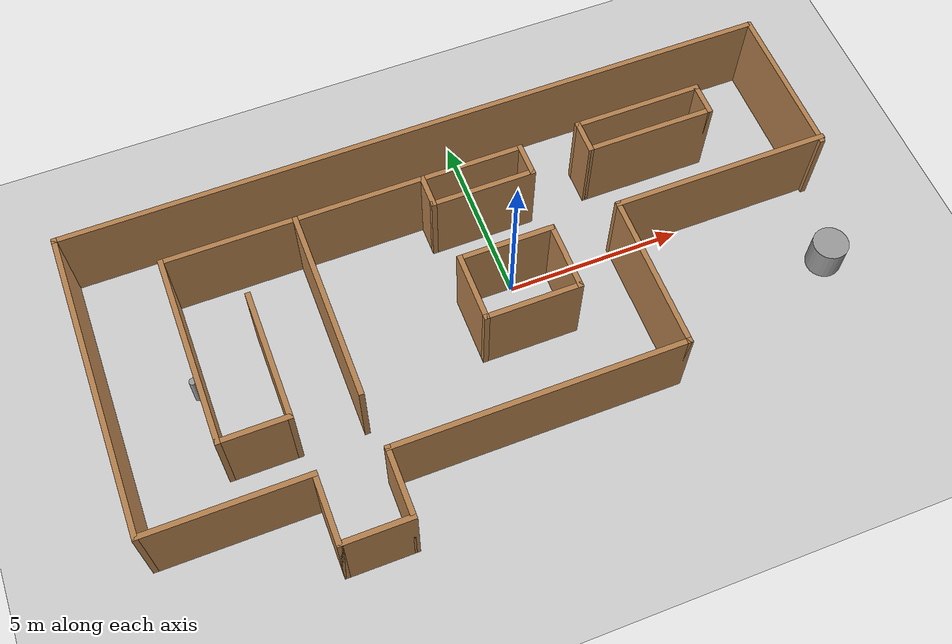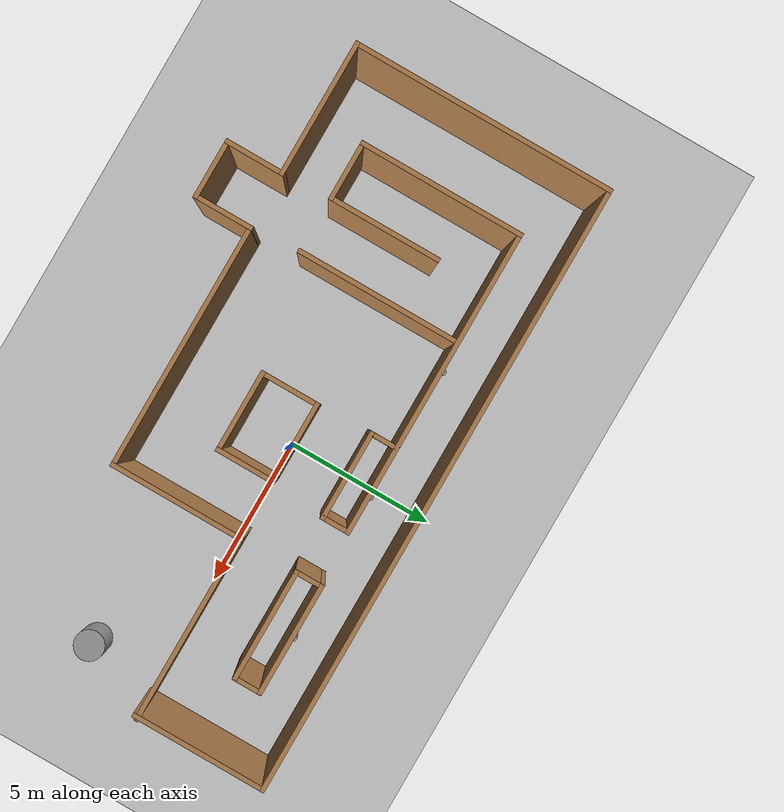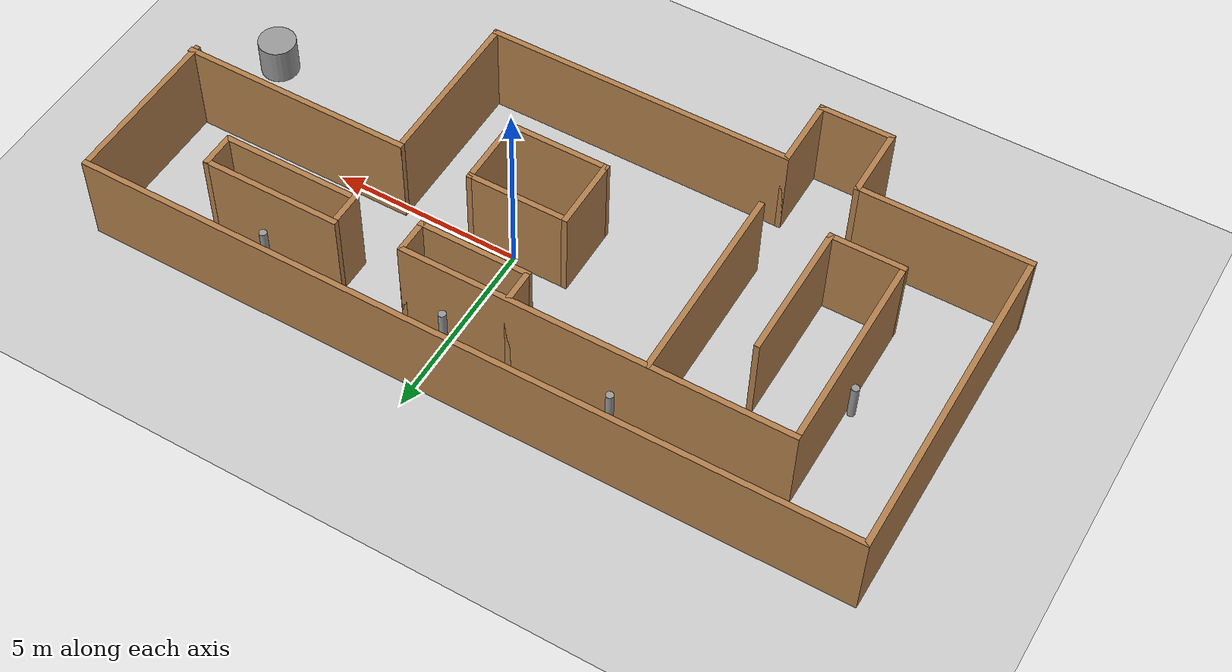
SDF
<sdf version="1.7">
 <world name="default">
  <light name="sun" type="directional">
   <pose>0 0 10 0 -0 0</pose>
   <diffuse>0.8 0.8 0.8 1</diffuse>
   <specular>0.2 0.2 0.2 1</specular>
   <attenuation>
    <range>1000</range>
    <constant>0.9</constant>
    <linear>0.01</linear>
    <quadratic>0.001</quadratic>
   </attenuation>
   <direction>-0.5 0.1 -0.9</direction>
   <spot><inner_angle>0</inner_angle><outer_angle>0</outer_angle><falloff>0</falloff></spot>
  </light>
  <model name="ground_plane">
   <static>1</static>
   <link name="link">
    <collision name="collision">
     <geometry><plane><normal>0 0 1</normal><size>100 100</size></plane></geometry>
     <surface>
      <contact><collide_bitmask>65535</collide_bitmask></contact>
      <friction><ode><mu>100</mu><mu2>50</mu2></ode></friction>
     </surface>
    </collision>
    <visual name="visual">
     <cast_shadows>0</cast_shadows>
     <geometry><plane><normal>0 0 1</normal><size>100 100</size></plane></geometry>
     <material>
      <script><uri>file://media/materials/scripts/gazebo.material</uri><name>Gazebo/Grey</name></script>
     </material>
    </visual>
   </link>
  </model>
  <gravity>0 0 -9.8</gravity>
  <magnetic_field>6e-06 2.3e-05 -4.2e-05</magnetic_field>
  <atmosphere type="adiabatic"/>
  <physics name="default_physics" default="0" type="ode">
   <max_step_size>0.001</max_step_size>
   <real_time_factor>1</real_time_factor>
   <real_time_update_rate>1000</real_time_update_rate>
  </physics>
  <scene><ambient>0.4 0.4 0.4 1</ambient><background>0.7 0.7 0.7 1</background><shadows>1</shadows></scene>
  <audio><device>default</device></audio>
  <spherical_coordinates>
   <surface_model>EARTH_WGS84</surface_model>
   <latitude_deg>0</latitude_deg>
   <longitude_deg>0</longitude_deg>
   <elevation>0</elevation>
   <heading_deg>0</heading_deg>
  </spherical_coordinates>
  <model name="dans_basic_maze">
   <pose>-1.05323 -0.832402 0 0 -0 0</pose>
   <link name="Wall_0">
    <collision name="Wall_0_Collision">
     <geometry><box><size>5.5 0.15 2.5</size></box></geometry>
     <pose>0 0 1.25 0 -0 0</pose>
    </collision>
    <visual name="Wall_0_Visual">
     <pose>0 0 1.25 0 -0 0</pose>
     <geometry><box><size>5.5 0.15 2.5</size></box></geometry>
     <material>
      <script><uri>file://media/materials/scripts/gazebo.material</uri><name>Gazebo/Wood</name></script>
      <ambient>1 1 1 1</ambient>
     </material>
     <meta><layer>0</layer></meta>
    </visual>
    <pose>-7.75378 0.921526 0 0 -0 1.5708</pose>
   </link>
   <link name="Wall_1">
    <collision name="Wall_1_Collision">
     <geometry><box><size>10.25 0.15 2.5</size></box></geometry>
     <pose>0 0 1.25 0 -0 0</pose>
    </collision>
    <visual name="Wall_1_Visual">
     <pose>0 0 1.25 0 -0 0</pose>
     <geometry><box><size>10.25 0.15 2.5</size></box></geometry>
     <material>
      <script><uri>file://media/materials/scripts/gazebo.material</uri><name>Gazebo/Wood</name></script>
      <ambient>1 1 1 1</ambient>
     </material>
     <meta><layer>0</layer></meta>
    </visual>
    <pose>-2.70378 3.59653 0 0 -0 0</pose>
   </link>
   <link name="Wall_11">
    <collision name="Wall_11_Collision">
     <geometry><box><size>5.5 0.15 2.5</size></box></geometry>
     <pose>0 0 1.25 0 -0 0</pose>
    </collision>
    <visual name="Wall_11_Visual">
     <pose>0 0 1.25 0 -0 0</pose>
     <geometry><box><size>5.5 0.15 2.5</size></box></geometry>
     <material>
      <script><uri>file://media/materials/scripts/gazebo.material</uri><name>Gazebo/Wood</name></script>
      <ambient>1 1 1 1</ambient>
     </material>
     <meta><layer>0</layer></meta>
    </visual>
    <pose>-4.08824 0.913758 0 0 -0 -1.5708</pose>
   </link>
   <link name="Wall_13">
    <collision name="Wall_13_Collision">
     <geometry><box><size>2.75 0.15 2.5</size></box></geometry>
     <pose>0 0 1.25 0 -0 0</pose>
    </collision>
    <visual name="Wall_13_Visual">
     <pose>0 0 1.25 0 -0 0</pose>
     <geometry><box><size>2.75 0.15 2.5</size></box></geometry>
     <material>
      <script><uri>file://media/materials/scripts/gazebo.material</uri><name>Gazebo/Wood</name></script>
      <ambient>1 1 1 1</ambient>
     </material>
     <meta><layer>0</layer></meta>
    </visual>
    <pose>0.866401 0.928739 0 0 -0 0</pose>
   </link>
   <link name="Wall_14">
    <collision name="Wall_14_Collision">
     <geometry><box><size>2 0.15 2.5</size></box></geometry>
     <pose>0 0 1.25 0 -0 0</pose>
    </collision>
    <visual name="Wall_14_Visual">
     <pose>0 0 1.25 0 -0 0</pose>
     <geometry><box><size>2 0.15 2.5</size></box></geometry>
     <material>
      <script><uri>file://media/materials/scripts/gazebo.material</uri><name>Gazebo/Wood</name></script>
      <ambient>1 1 1 1</ambient>
     </material>
     <meta><layer>0</layer></meta>
    </visual>
    <pose>2.1664 0.003739 0 0 -0 -1.5708</pose>
   </link>
   <link name="Wall_15">
    <collision name="Wall_15_Collision">
     <geometry><box><size>2.75 0.15 2.5</size></box></geometry>
     <pose>0 0 1.25 0 -0 0</pose>
    </collision>
    <visual name="Wall_15_Visual">
     <pose>0 0 1.25 0 -0 0</pose>
     <geometry><box><size>2.75 0.15 2.5</size></box></geometry>
     <material>
      <script><uri>file://media/materials/scripts/gazebo.material</uri><name>Gazebo/Wood</name></script>
      <ambient>1 1 1 1</ambient>
     </material>
     <meta><layer>0</layer></meta>
    </visual>
    <pose>0.866401 -0.921261 0 0 -0 3.14159</pose>
   </link>
   <link name="Wall_16">
    <collision name="Wall_16_Collision">
     <geometry><box><size>2 0.15 2.5</size></box></geometry>
     <pose>0 0 1.25 0 -0 0</pose>
    </collision>
    <visual name="Wall_16_Visual">
     <pose>0 0 1.25 0 -0 0</pose>
     <geometry><box><size>2 0.15 2.5</size></box></geometry>
     <material>
      <script><uri>file://media/materials/scripts/gazebo.material</uri><name>Gazebo/Wood</name></script>
      <ambient>1 1 1 1</ambient>
     </material>
     <meta><layer>0</layer></meta>
    </visual>
    <pose>-0.433599 0.003739 0 0 -0 1.5708</pose>
   </link>
   <link name="Wall_18">
    <collision name="Wall_18_Collision">
     <geometry><box><size>1 0.15 2.5</size></box></geometry>
     <pose>0 0 1.25 0 -0 0</pose>
    </collision>
    <visual name="Wall_18_Visual">
     <pose>0 0 1.25 0 -0 0</pose>
     <geometry><box><size>1 0.15 2.5</size></box></geometry>
     <material>
      <script><uri>file://media/materials/scripts/gazebo.material</uri><name>Gazebo/Wood</name></script>
      <ambient>1 1 1 1</ambient>
     </material>
     <meta><layer>0</layer></meta>
    </visual>
    <pose>4.12313 3.30254 0 0 -0 -1.5708</pose>
   </link>
   <link name="Wall_19">
    <collision name="Wall_19_Collision">
     <geometry><box><size>3.75 0.15 2.5</size></box></geometry>
     <pose>0 0 1.25 0 -0 0</pose>
    </collision>
    <visual name="Wall_19_Visual">
     <pose>0 0 1.25 0 -0 0</pose>
     <geometry><box><size>3.75 0.15 2.5</size></box></geometry>
     <material>
      <script><uri>file://media/materials/scripts/gazebo.material</uri><name>Gazebo/Wood</name></script>
      <ambient>1 1 1 1</ambient>
     </material>
     <meta><layer>0</layer></meta>
    </visual>
    <pose>5.92313 2.87754 0 0 -0 0</pose>
   </link>
   <link name="Wall_2">
    <collision name="Wall_2_Collision">
     <geometry><box><size>1 0.15 2.5</size></box></geometry>
     <pose>0 0 1.25 0 -0 0</pose>
    </collision>
    <visual name="Wall_2_Visual">
     <pose>0 0 1.25 0 -0 0</pose>
     <geometry><box><size>1 0.15 2.5</size></box></geometry>
     <material>
      <script><uri>file://media/materials/scripts/gazebo.material</uri><name>Gazebo/Wood</name></script>
      <ambient>1 1 1 1</ambient>
     </material>
     <meta><layer>0</layer></meta>
    </visual>
    <pose>2.34622 3.17153 0 0 -0 -1.5708</pose>
   </link>
   <link name="Wall_20">
    <collision name="Wall_20_Collision">
     <geometry><box><size>1 0.15 2.5</size></box></geometry>
     <pose>0 0 1.25 0 -0 0</pose>
    </collision>
    <visual name="Wall_20_Visual">
     <pose>0 0 1.25 0 -0 0</pose>
     <geometry><box><size>1 0.15 2.5</size></box></geometry>
     <material>
      <script><uri>file://media/materials/scripts/gazebo.material</uri><name>Gazebo/Wood</name></script>
      <ambient>1 1 1 1</ambient>
     </material>
     <meta><layer>0</layer></meta>
    </visual>
    <pose>7.72313 3.30254 0 0 -0 1.5708</pose>
   </link>
   <link name="Wall_21">
    <collision name="Wall_21_Collision">
     <geometry><box><size>3.75 0.15 2.5</size></box></geometry>
     <pose>0 0 1.25 0 -0 0</pose>
    </collision>
    <visual name="Wall_21_Visual">
     <pose>0 0 1.25 0 -0 0</pose>
     <geometry><box><size>3.75 0.15 2.5</size></box></geometry>
     <material>
      <script><uri>file://media/materials/scripts/gazebo.material</uri><name>Gazebo/Wood</name></script>
      <ambient>1 1 1 1</ambient>
     </material>
     <meta><layer>0</layer></meta>
    </visual>
    <pose>5.92313 3.72754 0 0 -0 3.14159</pose>
   </link>
   <link name="Wall_23">
    <collision name="Wall_23_Collision">
     <geometry><box><size>4.5 0.15 2.5</size></box></geometry>
     <pose>0 0 1.25 0 -0 0</pose>
    </collision>
    <visual name="Wall_23_Visual">
     <pose>0 0 1.25 0 -0 0</pose>
     <geometry><box><size>4.5 0.15 2.5</size></box></geometry>
     <material>
      <script><uri>file://media/materials/scripts/gazebo.material</uri><name>Gazebo/Wood</name></script>
      <ambient>1 1 1 1</ambient>
     </material>
     <meta><layer>0</layer></meta>
    </visual>
    <pose>4.1 -1.2 0 0 -0 -1.5708</pose>
   </link>
   <link name="Wall_3">
    <collision name="Wall_3_Collision">
     <geometry><box><size>3 0.15 2.5</size></box></geometry>
     <pose>0 0 1.25 0 -0 0</pose>
    </collision>
    <visual name="Wall_3_Visual">
     <pose>0 0 1.25 0 -0 0</pose>
     <geometry><box><size>3 0.15 2.5</size></box></geometry>
     <material>
      <script><uri>file://media/materials/scripts/gazebo.material</uri><name>Gazebo/Wood</name></script>
      <ambient>1 1 1 1</ambient>
     </material>
     <meta><layer>0</layer></meta>
    </visual>
    <pose>0.92122 2.74653 0 0 -0 3.14159</pose>
   </link>
   <link name="Wall_33">
    <collision name="Wall_33_Collision">
     <geometry><box><size>4.54626 0.15 2.5</size></box></geometry>
     <pose>0 0 1.25 0 -0 0</pose>
    </collision>
    <visual name="Wall_33_Visual">
     <pose>0 0 1.25 0 -0 0</pose>
     <geometry><box><size>4.54626 0.15 2.5</size></box></geometry>
     <material>
      <script><uri>file://media/materials/scripts/gazebo.material</uri><name>Gazebo/Wood</name></script>
      <ambient>1 1 1 1</ambient>
     </material>
     <meta><layer>0</layer></meta>
    </visual>
    <pose>-8.00187 -3.375 0 0 -0 3.14159</pose>
   </link>
   <link name="Wall_34">
    <collision name="Wall_34_Collision">
     <geometry><box><size>8.75 0.15 2.5</size></box></geometry>
     <pose>0 0 1.25 0 -0 0</pose>
    </collision>
    <visual name="Wall_34_Visual">
     <pose>0 0 1.25 0 -0 0</pose>
     <geometry><box><size>8.75 0.15 2.5</size></box></geometry>
     <material>
      <script><uri>file://media/materials/scripts/gazebo.material</uri><name>Gazebo/Wood</name></script>
      <ambient>1 1 1 1</ambient>
     </material>
     <meta><layer>0</layer></meta>
    </visual>
    <pose>-10.2 0.925 0 0 -0 1.5708</pose>
   </link>
   <link name="Wall_35">
    <collision name="Wall_35_Collision">
     <geometry><box><size>20.5 0.15 2.5</size></box></geometry>
     <pose>0 0 1.25 0 -0 0</pose>
    </collision>
    <visual name="Wall_35_Visual">
     <pose>0 0 1.25 0 -0 0</pose>
     <geometry><box><size>20.5 0.15 2.5</size></box></geometry>
     <material>
      <script><uri>file://media/materials/scripts/gazebo.material</uri><name>Gazebo/Wood</name></script>
      <ambient>1 1 1 1</ambient>
     </material>
     <meta><layer>0</layer></meta>
    </visual>
    <pose>-0.025 5.225 0 0 -0 0</pose>
   </link>
   <link name="Wall_36">
    <collision name="Wall_36_Collision">
     <geometry><box><size>4.5 0.15 2.5</size></box></geometry>
     <pose>0 0 1.25 0 -0 0</pose>
    </collision>
    <visual name="Wall_36_Visual">
     <pose>0 0 1.25 0 -0 0</pose>
     <geometry><box><size>4.5 0.15 2.5</size></box></geometry>
     <material>
      <script><uri>file://media/materials/scripts/gazebo.material</uri><name>Gazebo/Wood</name></script>
      <ambient>1 1 1 1</ambient>
     </material>
     <meta><layer>0</layer></meta>
    </visual>
    <pose>10.15 3.05 0 0 -0 -1.5708</pose>
   </link>
   <link name="Wall_38">
    <collision name="Wall_38_Collision">
     <geometry><box><size>6.25 0.15 2.5</size></box></geometry>
     <pose>0 0 1.25 0 -0 0</pose>
    </collision>
    <visual name="Wall_38_Visual">
     <pose>0 0 1.25 0 -0 0</pose>
     <geometry><box><size>6.25 0.15 2.5</size></box></geometry>
     <material>
      <script><uri>file://media/materials/scripts/gazebo.material</uri><name>Gazebo/Wood</name></script>
      <ambient>1 1 1 1</ambient>
     </material>
     <meta><layer>0</layer></meta>
    </visual>
    <pose>7.15 0.975 0 0 -0 0</pose>
   </link>
   <link name="Wall_40">
    <collision name="Wall_40_Collision">
     <geometry><box><size>2 0.15 2.5</size></box></geometry>
     <pose>0 0 1.25 0 -0 0</pose>
    </collision>
    <visual name="Wall_40_Visual">
     <pose>0 0 1.25 0 -0 0</pose>
     <geometry><box><size>2 0.15 2.5</size></box></geometry>
     <material>
      <script><uri>file://media/materials/scripts/gazebo.material</uri><name>Gazebo/Wood</name></script>
      <ambient>1 1 1 1</ambient>
     </material>
     <meta><layer>0</layer></meta>
    </visual>
    <pose>-6.82878 -1.75347 0 0 -0 0</pose>
   </link>
   <link name="Wall_41">
    <collision name="Wall_41_Collision">
     <geometry><box><size>3.75 0.15 2.5</size></box></geometry>
     <pose>0 0 1.25 0 -0 0</pose>
    </collision>
    <visual name="Wall_41_Visual">
     <pose>0 0 1.25 0 -0 0</pose>
     <geometry><box><size>3.75 0.15 2.5</size></box></geometry>
     <material>
      <script><uri>file://media/materials/scripts/gazebo.material</uri><name>Gazebo/Wood</name></script>
      <ambient>1 1 1 1</ambient>
     </material>
     <meta><layer>0</layer></meta>
    </visual>
    <pose>-5.90378 0.046526 0 0 -0 1.5708</pose>
   </link>
   <link name="Wall_43">
    <collision name="Wall_43_Collision">
     <geometry><box><size>2 0.15 2.5</size></box></geometry>
     <pose>0 0 1.25 0 -0 0</pose>
    </collision>
    <visual name="Wall_43_Visual">
     <pose>0 0 1.25 0 -0 0</pose>
     <geometry><box><size>2 0.15 2.5</size></box></geometry>
     <material>
      <script><uri>file://media/materials/scripts/gazebo.material</uri><name>Gazebo/Wood</name></script>
      <ambient>1 1 1 1</ambient>
     </material>
     <meta><layer>0</layer></meta>
    </visual>
    <pose>-5.80374 -4.3 0 0 -0 -1.5708</pose>
   </link>
   <link name="Wall_44">
    <collision name="Wall_44_Collision">
     <geometry><box><size>2 0.15 2.5</size></box></geometry>
     <pose>0 0 1.25 0 -0 0</pose>
    </collision>
    <visual name="Wall_44_Visual">
     <pose>0 0 1.25 0 -0 0</pose>
     <geometry><box><size>2 0.15 2.5</size></box></geometry>
     <material>
      <script><uri>file://media/materials/scripts/gazebo.material</uri><name>Gazebo/Wood</name></script>
      <ambient>1 1 1 1</ambient>
     </material>
     <meta><layer>0</layer></meta>
    </visual>
    <pose>-4.87874 -5.225 0 0 -0 0</pose>
   </link>
   <link name="Wall_45">
    <collision name="Wall_45_Collision">
     <geometry><box><size>2 0.15 2.5</size></box></geometry>
     <pose>0 0 1.25 0 -0 0</pose>
    </collision>
    <visual name="Wall_45_Visual">
     <pose>0 0 1.25 0 -0 0</pose>
     <geometry><box><size>2 0.15 2.5</size></box></geometry>
     <material>
      <script><uri>file://media/materials/scripts/gazebo.material</uri><name>Gazebo/Wood</name></script>
      <ambient>1 1 1 1</ambient>
     </material>
     <meta><layer>0</layer></meta>
    </visual>
    <pose>-3.95374 -4.3 0 0 -0 1.5708</pose>
   </link>
   <link name="Wall_46">
    <collision name="Wall_46_Collision">
     <geometry><box><size>8.20374 0.15 2.5</size></box></geometry>
     <pose>0 0 1.25 0 -0 0</pose>
    </collision>
    <visual name="Wall_46_Visual">
     <pose>0 0 1.25 0 -0 0</pose>
     <geometry><box><size>8.20374 0.15 2.5</size></box></geometry>
     <material>
      <script><uri>file://media/materials/scripts/gazebo.material</uri><name>Gazebo/Wood</name></script>
      <ambient>1 1 1 1</ambient>
     </material>
     <meta><layer>0</layer></meta>
    </visual>
    <pose>0.073131 -3.375 0 0 -0 0</pose>
   </link>
   <link name="Wall_6">
    <collision name="Wall_6_Collision">
     <geometry><box><size>1 0.15 2.5</size></box></geometry>
     <pose>0 0 1.25 0 -0 0</pose>
    </collision>
    <visual name="Wall_6_Visual">
     <pose>0 0 1.25 0 -0 0</pose>
     <geometry><box><size>1 0.15 2.5</size></box></geometry>
     <material>
      <script><uri>file://media/materials/scripts/gazebo.material</uri><name>Gazebo/Wood</name></script>
      <ambient>1 1 1 1</ambient>
     </material>
     <meta><layer>0</layer></meta>
    </visual>
    <pose>-0.50378 3.17153 0 0 -0 1.5708</pose>
   </link>
   <static>1</static>
  </model>
  <model name="Untitled">
   <link name="link_2">
    <inertial>
     <mass>1</mass>
     <inertia><ixx>0.145833</ixx><ixy>0</ixy><ixz>0</ixz><iyy>0.145833</iyy><iyz>0</iyz><izz>0.125</izz></inertia>
    </inertial>
    <pose>2e-06 -3e-06 0 0 -0 0</pose>
    <visual name="visual">
     <geometry><cylinder><radius>0.5</radius><length>1</length></cylinder></geometry>
     <material>
      <lighting>1</lighting>
      <script><uri>file://media/materials/scripts/gazebo.material</uri><name>Gazebo/Grey</name></script>
      <shader type="pixel"/>
     </material>
    </visual>
    <collision name="collision">
     <geometry><cylinder><radius>0.5</radius><length>1</length></cylinder></geometry>
     <surface>
      <friction>
       <ode><mu>1</mu><mu2>1</mu2><fdir1>0 0 0</fdir1><slip1>0</slip1><slip2>0</slip2></ode>
       <torsional>
        <coefficient>1</coefficient>
        <patch_radius>0</patch_radius>
        <surface_radius>0</surface_radius>
        <use_patch_radius>1</use_patch_radius>
        <ode><slip>0</slip></ode>
       </torsional>
      </friction>
      <bounce><restitution_coefficient>0</restitution_coefficient><threshold>1e+06</threshold></bounce>
      <contact>
       <collide_without_contact>0</collide_without_contact>
       <collide_without_contact_bitmask>1</collide_without_contact_bitmask>
       <collide_bitmask>1</collide_bitmask>
       <ode>
        <soft_cfm>0</soft_cfm>
        <soft_erp>0.2</soft_erp>
        <kp>1e+13</kp>
        <kd>1</kd>
        <max_vel>0.01</max_vel>
        <min_depth>0</min_depth>
       </ode>
       <bullet>
        <split_impulse>1</split_impulse>
        <split_impulse_penetration_threshold>-0.01</split_impulse_penetration_threshold>
        <soft_cfm>0</soft_cfm>
        <soft_erp>0.2</soft_erp>
        <kp>1e+13</kp>
        <kd>1</kd>
       </bullet>
      </contact>
     </surface>
    </collision>
   </link>
   <static>0</static>
   <pose>8.51236 -2.3072 0.499998 3e-06 3e-06 0</pose>
  </model>
  <model name="Untitled_1">
   <link name="link_0">
    <inertial>
     <mass>1</mass>
     <inertia><ixx>0.145833</ixx><ixy>0</ixy><ixz>0</ixz><iyy>0.145833</iyy><iyz>0</iyz><izz>0.125</izz></inertia>
    </inertial>
    <pose>-0 5e-06 0 0 -0 0</pose>
    <visual name="visual">
     <geometry><cylinder><radius>0.1</radius><length>1</length></cylinder></geometry>
     <material>
      <lighting>1</lighting>
      <script><uri>file://media/materials/scripts/gazebo.material</uri><name>Gazebo/Grey</name></script>
      <shader type="pixel"><normal_map>__default__</normal_map></shader>
      <ambient>0.3 0.3 0.3 1</ambient>
      <diffuse>0.7 0.7 0.7 1</diffuse>
      <specular>0.01 0.01 0.01 1</specular>
      <emissive>0 0 0 1</emissive>
     </material>
    </visual>
    <collision name="collision">
     <geometry><cylinder><radius>0.1</radius><length>1</length></cylinder></geometry>
     <surface>
      <friction>
       <ode><mu>1</mu><mu2>1</mu2><fdir1>0 0 0</fdir1><slip1>0</slip1><slip2>0</slip2></ode>
       <torsional>
        <coefficient>1</coefficient>
        <patch_radius>0</patch_radius>
        <surface_radius>0</surface_radius>
        <use_patch_radius>1</use_patch_radius>
        <ode><slip>0</slip></ode>
       </torsional>
      </friction>
      <bounce><restitution_coefficient>0</restitution_coefficient><threshold>1e+06</threshold></bounce>
      <contact>
       <collide_without_contact>0</collide_without_contact>
       <collide_without_contact_bitmask>1</collide_without_contact_bitmask>
       <collide_bitmask>1</collide_bitmask>
       <ode>
        <soft_cfm>0</soft_cfm>
        <soft_erp>0.2</soft_erp>
        <kp>1e+13</kp>
        <kd>1</kd>
        <max_vel>0.01</max_vel>
        <min_depth>0</min_depth>
       </ode>
       <bullet>
        <split_impulse>1</split_impulse>
        <split_impulse_penetration_threshold>-0.01</split_impulse_penetration_threshold>
        <soft_cfm>0</soft_cfm>
        <soft_erp>0.2</soft_erp>
        <kp>1e+13</kp>
        <kd>1</kd>
       </bullet>
      </contact>
     </surface>
    </collision>
   </link>
   <static>0</static>
   <pose>-4.32669 2.93913 0.499992 -0 -0 -0.000129</pose>
  </model>
  <model name="Untitled_1_clone">
   <link name="link_0">
    <inertial>
     <mass>1</mass>
     <inertia><ixx>0.145833</ixx><ixy>0</ixy><ixz>0</ixz><iyy>0.145833</iyy><iyz>0</iyz><izz>0.125</izz></inertia>
    </inertial>
    <pose>-0 5e-06 0 0 -0 0</pose>
    <visual name="visual">
     <geometry><cylinder><radius>0.1</radius><length>1</length></cylinder></geometry>
     <material>
      <lighting>1</lighting>
      <script><uri>file://media/materials/scripts/gazebo.material</uri><name>Gazebo/Grey</name></script>
      <shader type="pixel"><normal_map>__default__</normal_map></shader>
      <ambient>0.3 0.3 0.3 1</ambient>
      <diffuse>0.7 0.7 0.7 1</diffuse>
      <specular>0.01 0.01 0.01 1</specular>
      <emissive>0 0 0 1</emissive>
     </material>
    </visual>
    <collision name="collision">
     <geometry><cylinder><radius>0.1</radius><length>1</length></cylinder></geometry>
     <surface>
      <friction>
       <ode><mu>1</mu><mu2>1</mu2><fdir1>0 0 0</fdir1><slip1>0</slip1><slip2>0</slip2></ode>
       <torsional>
        <coefficient>1</coefficient>
        <patch_radius>0</patch_radius>
        <surface_radius>0</surface_radius>
        <use_patch_radius>1</use_patch_radius>
        <ode><slip>0</slip></ode>
       </torsional>
      </friction>
      <bounce><restitution_coefficient>0</restitution_coefficient><threshold>1e+06</threshold></bounce>
      <contact>
       <collide_without_contact>0</collide_without_contact>
       <collide_without_contact_bitmask>1</collide_without_contact_bitmask>
       <collide_bitmask>1</collide_bitmask>
       <ode>
        <soft_cfm>0</soft_cfm>
        <soft_erp>0.2</soft_erp>
        <kp>1e+13</kp>
        <kd>1</kd>
        <max_vel>0.01</max_vel>
        <min_depth>0</min_depth>
       </ode>
       <bullet>
        <split_impulse>1</split_impulse>
        <split_impulse_penetration_threshold>-0.01</split_impulse_penetration_threshold>
        <soft_cfm>0</soft_cfm>
        <soft_erp>0.2</soft_erp>
        <kp>1e+13</kp>
        <kd>1</kd>
       </bullet>
      </contact>
     </surface>
    </collision>
   </link>
   <static>0</static>
   <pose>-8.99458 -0.065574 0.499998 0 0 -5.5e-05</pose>
  </model>
  <model name="Untitled_1_clone_0">
   <link name="link_0">
    <inertial>
     <mass>1</mass>
     <inertia><ixx>0.145833</ixx><ixy>0</ixy><ixz>0</ixz><iyy>0.145833</iyy><iyz>0</iyz><izz>0.125</izz></inertia>
    </inertial>
    <pose>-0 5e-06 0 0 -0 0</pose>
    <visual name="visual">
     <geometry><cylinder><radius>0.1</radius><length>1</length></cylinder></geometry>
     <material>
      <lighting>1</lighting>
      <script><uri>file://media/materials/scripts/gazebo.material</uri><name>Gazebo/Grey</name></script>
      <shader type="pixel"><normal_map>__default__</normal_map></shader>
      <ambient>0.3 0.3 0.3 1</ambient>
      <diffuse>0.7 0.7 0.7 1</diffuse>
      <specular>0.01 0.01 0.01 1</specular>
      <emissive>0 0 0 1</emissive>
     </material>
    </visual>
    <collision name="collision">
     <geometry><cylinder><radius>0.1</radius><length>1</length></cylinder></geometry>
     <surface>
      <friction>
       <ode><mu>1</mu><mu2>1</mu2><fdir1>0 0 0</fdir1><slip1>0</slip1><slip2>0</slip2></ode>
       <torsional>
        <coefficient>1</coefficient>
        <patch_radius>0</patch_radius>
        <surface_radius>0</surface_radius>
        <use_patch_radius>1</use_patch_radius>
        <ode><slip>0</slip></ode>
       </torsional>
      </friction>
      <bounce><restitution_coefficient>0</restitution_coefficient><threshold>1e+06</threshold></bounce>
      <contact>
       <collide_without_contact>0</collide_without_contact>
       <collide_without_contact_bitmask>1</collide_without_contact_bitmask>
       <collide_bitmask>1</collide_bitmask>
       <ode>
        <soft_cfm>0</soft_cfm>
        <soft_erp>0.2</soft_erp>
        <kp>1e+13</kp>
        <kd>1</kd>
        <max_vel>0.01</max_vel>
        <min_depth>0</min_depth>
       </ode>
       <bullet>
        <split_impulse>1</split_impulse>
        <split_impulse_penetration_threshold>-0.01</split_impulse_penetration_threshold>
        <soft_cfm>0</soft_cfm>
        <soft_erp>0.2</soft_erp>
        <kp>1e+13</kp>
        <kd>1</kd>
       </bullet>
      </contact>
     </surface>
    </collision>
   </link>
   <static>0</static>
   <pose>0.150555 2.94006 0.499992 0 -0 -8.9e-05</pose>
  </model>
  <model name="Untitled_1_clone_1">
   <link name="link_0">
    <inertial>
     <mass>1</mass>
     <inertia><ixx>0.145833</ixx><ixy>0</ixy><ixz>0</ixz><iyy>0.145833</iyy><iyz>0</iyz><izz>0.125</izz></inertia>
    </inertial>
    <pose>-0 5e-06 0 0 -0 0</pose>
    <visual name="visual">
     <geometry><cylinder><radius>0.1</radius><length>1</length></cylinder></geometry>
     <material>
      <lighting>1</lighting>
      <script><uri>file://media/materials/scripts/gazebo.material</uri><name>Gazebo/Grey</name></script>
      <shader type="pixel"><normal_map>__default__</normal_map></shader>
      <ambient>0.3 0.3 0.3 1</ambient>
      <diffuse>0.7 0.7 0.7 1</diffuse>
      <specular>0.01 0.01 0.01 1</specular>
      <emissive>0 0 0 1</emissive>
     </material>
    </visual>
    <collision name="collision">
     <geometry><cylinder><radius>0.1</radius><length>1</length></cylinder></geometry>
     <surface>
      <friction>
       <ode><mu>1</mu><mu2>1</mu2><fdir1>0 0 0</fdir1><slip1>0</slip1><slip2>0</slip2></ode>
       <torsional>
        <coefficient>1</coefficient>
        <patch_radius>0</patch_radius>
        <surface_radius>0</surface_radius>
        <use_patch_radius>1</use_patch_radius>
        <ode><slip>0</slip></ode>
       </torsional>
      </friction>
      <bounce><restitution_coefficient>0</restitution_coefficient><threshold>1e+06</threshold></bounce>
      <contact>
       <collide_without_contact>0</collide_without_contact>
       <collide_without_contact_bitmask>1</collide_without_contact_bitmask>
       <collide_bitmask>1</collide_bitmask>
       <ode>
        <soft_cfm>0</soft_cfm>
        <soft_erp>0.2</soft_erp>
        <kp>1e+13</kp>
        <kd>1</kd>
        <max_vel>0.01</max_vel>
        <min_depth>0</min_depth>
       </ode>
       <bullet>
        <split_impulse>1</split_impulse>
        <split_impulse_penetration_threshold>-0.01</split_impulse_penetration_threshold>
        <soft_cfm>0</soft_cfm>
        <soft_erp>0.2</soft_erp>
        <kp>1e+13</kp>
        <kd>1</kd>
       </bullet>
      </contact>
     </surface>
    </collision>
   </link>
   <static>0</static>
   <pose>5.12444 3.07724 0.499991 -0 -0 -0.000121</pose>
  </model>
 </world>
</sdf>
